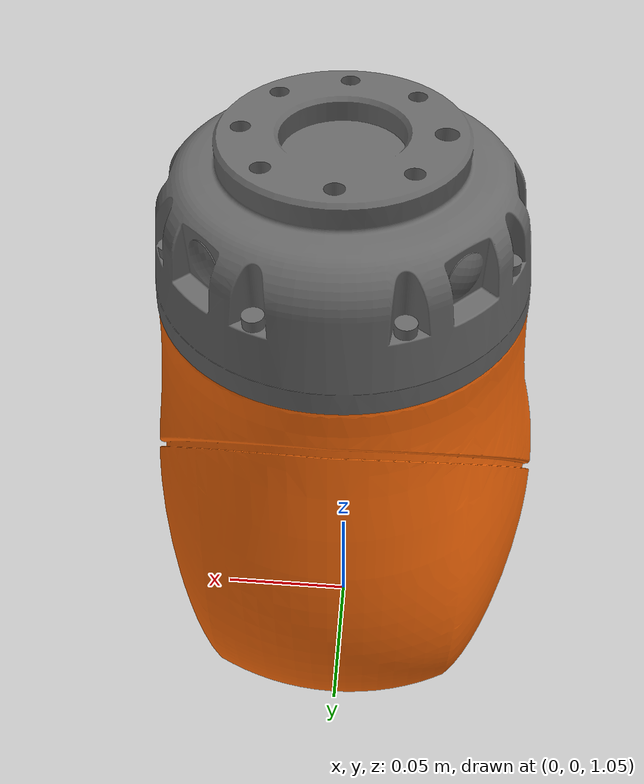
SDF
<?xml version="1.0" ?>
<sdf version='1.6'>
  <model name='iiwa7'>
    <link name='shim_0'>
      <pose frame=''>0 0 0.1575 0 -0 0</pose>
      <inertial>
        <pose frame=''>0 -0.0347 0.113 0 -0 0</pose>
        <mass>2.7025</mass>
        <inertia>
          <ixx>0.0171</ixx>
          <ixy>0</ixy>
          <ixz>0</ixz>
          <iyy>0.0163</iyy>
          <iyz>0</iyz>
          <izz>0.006</izz>
        </inertia>
      </inertial>
      <gravity>1</gravity>
      <velocity_decay/>
      <self_collide>0</self_collide>
    </link>

    <joint name='slide_x' type='prismatic'>
      <child>shim_1</child>
      <parent>shim_0</parent>
      <axis>
        <xyz>1 0 0</xyz>
        <limit>
          <lower>-2</lower>
          <upper>2</upper>
          <effort>300</effort>
          <velocity>0.3</velocity>
        </limit>
        <dynamics>
          <damping>0.0</damping>
          <friction>0</friction>
          <spring_reference>0</spring_reference>
          <spring_stiffness>0</spring_stiffness>
        </dynamics>
        <use_parent_model_frame>1</use_parent_model_frame>
      </axis>
    </joint>

    <link name='shim_1'>
      <pose frame=''>0 0 0.1575 0 -0 0</pose>
      <inertial>
        <pose frame=''>0 -0.0347 0.113 0 -0 0</pose>
        <mass>2.7025</mass>
        <inertia>
          <ixx>0.0171</ixx>
          <ixy>0</ixy>
          <ixz>0</ixz>
          <iyy>0.0163</iyy>
          <iyz>0</iyz>
          <izz>0.006</izz>
        </inertia>
      </inertial>
      <gravity>1</gravity>
      <velocity_decay/>
      <self_collide>0</self_collide>
    </link>

    <joint name='slide_y' type='prismatic'>
      <child>shim_2</child>
      <parent>shim_1</parent>
      <axis>
        <xyz>0 1 0</xyz>
        <limit>
          <lower>-2</lower>
          <upper>2</upper>
          <effort>300</effort>
          <velocity>0.3</velocity>
        </limit>
        <dynamics>
          <damping>0.0</damping>
          <friction>0</friction>
          <spring_reference>0</spring_reference>
          <spring_stiffness>0</spring_stiffness>
        </dynamics>
        <use_parent_model_frame>1</use_parent_model_frame>
      </axis>
    </joint>

    <link name='shim_2'>
      <pose frame=''>0 0 0.1575 0 -0 0</pose>
      <inertial>
        <pose frame=''>0 -0.0347 0.113 0 -0 0</pose>
        <mass>2.7025</mass>
        <inertia>
          <ixx>0.0171</ixx>
          <ixy>0</ixy>
          <ixz>0</ixz>
          <iyy>0.0163</iyy>
          <iyz>0</iyz>
          <izz>0.006</izz>
        </inertia>
      </inertial>
      <gravity>1</gravity>
      <velocity_decay/>
      <self_collide>0</self_collide>
    </link>

    <joint name='slide_z' type='prismatic'>
      <child>iiwa_link_0</child>
      <parent>shim_2</parent>
      <axis>
        <xyz>0 0 1</xyz>
        <limit>
          <lower>-2</lower>
          <upper>2</upper>
          <effort>300</effort>
          <velocity>0.3</velocity>
        </limit>
        <dynamics>
          <damping>0.0</damping>
          <friction>0</friction>
          <spring_reference>0</spring_reference>
          <spring_stiffness>0</spring_stiffness>
        </dynamics>
        <use_parent_model_frame>1</use_parent_model_frame>
      </axis>
    </joint>

    <link name='iiwa_link_0'>
      <pose frame=''>0 0 0 0 -0 0</pose>
      <inertial>
        <pose frame=''>-0.013 0 0.07 0 -0 0</pose>
        <mass>3.863</mass>
        <inertia>
          <ixx>0.0141</ixx>
          <ixy>0</ixy>
          <ixz>0</ixz>
          <iyy>0.0171</iyy>
          <iyz>0</iyz>
          <izz>0.0178</izz>
        </inertia>
      </inertial>
      <gravity>1</gravity>
      <velocity_decay/>
      <self_collide>0</self_collide>
    </link>

    <link name='iiwa_link_1'>
      <pose frame=''>0 0 0.1575 0 -0 0</pose>
      <inertial>
        <pose frame=''>0 -0.0347 0.113 0 -0 0</pose>
        <mass>2.7025</mass>
        <inertia>
          <ixx>0.0171</ixx>
          <ixy>0</ixy>
          <ixz>0</ixz>
          <iyy>0.0163</iyy>
          <iyz>0</iyz>
          <izz>0.006</izz>
        </inertia>
      </inertial>
      <gravity>1</gravity>
      <velocity_decay/>
      <self_collide>0</self_collide>
    </link>
    <joint name='iiwa_joint_1' type='revolute'>
      <child>iiwa_link_1</child>
      <parent>iiwa_link_0</parent>
      <axis>
        <xyz>0 0 1</xyz>
        <limit>
          <lower>-2.96706</lower>
          <upper>2.96706</upper>
          <effort>300</effort>
          <velocity>3.14</velocity>
        </limit>
        <dynamics>
          <damping>0.0</damping>
          <friction>0</friction>
          <spring_reference>0</spring_reference>
          <spring_stiffness>0</spring_stiffness>
        </dynamics>
        <use_parent_model_frame>1</use_parent_model_frame>
      </axis>
    </joint>
    <link name='iiwa_link_2'>
      <pose frame=''>0 0 0.3405 1.5708 -0 -3.14159</pose>
      <inertial>
        <pose frame=''>0.000 0.0668 0.0344 0 -0 0</pose>
        <mass>2.7258</mass>
        <inertia>
          <ixx>0.0170</ixx>
          <ixy>0</ixy>
          <ixz>0</ixz>
          <iyy>0.0162</iyy>
          <iyz>0</iyz>
          <izz>0.0061</izz>
        </inertia>
      </inertial>
      <gravity>1</gravity>
      <velocity_decay/>
      <self_collide>0</self_collide>
    </link>
    <joint name='iiwa_joint_2' type='revolute'>
      <child>iiwa_link_2</child>
      <parent>iiwa_link_1</parent>
      <axis>
        <xyz>-0 1 0</xyz>
        <limit>
          <lower>-2.0944</lower>
          <upper>2.0944</upper>
          <effort>300</effort>
          <velocity>3.14</velocity>
        </limit>
        <dynamics>
          <damping>0.0</damping>
          <friction>0</friction>
          <spring_reference>0</spring_reference>
          <spring_stiffness>0</spring_stiffness>
        </dynamics>
        <use_parent_model_frame>1</use_parent_model_frame>
      </axis>
    </joint>
    <link name='iiwa_link_3'>
      <pose frame=''>0 -0 0.5245 0 0 0</pose>
      <inertial>
        <pose frame=''>0 0.0296 0.1265 0 -0 0</pose>
        <mass>3.175</mass>
        <inertia>
          <ixx>0.025</ixx>
          <ixy>0</ixy>
          <ixz>0</ixz>
          <iyy>0.0238</iyy>
          <iyz>0</iyz>
          <izz>0.0076</izz>
        </inertia>
      </inertial>
      <gravity>1</gravity>
      <velocity_decay/>
      <self_collide>0</self_collide>
    </link>
    <joint name='iiwa_joint_3' type='revolute'>
      <child>iiwa_link_3</child>
      <parent>iiwa_link_2</parent>
      <axis>
        <xyz>0 0 1</xyz>
        <limit>
          <lower>-2.96706</lower>
          <upper>2.96706</upper>
          <effort>300</effort>
          <velocity>3.14</velocity>
        </limit>
        <dynamics>
          <damping>0.0</damping>
          <friction>0</friction>
          <spring_reference>0</spring_reference>
          <spring_stiffness>0</spring_stiffness>
        </dynamics>
        <use_parent_model_frame>1</use_parent_model_frame>
      </axis>
    </joint>
    <link name='iiwa_link_4'>
      <pose frame=''>0 -0 0.74 1.5708 0 0</pose>
      <inertial>
        <pose frame=''>0 0.067 0.034 0 -0 0</pose>
        <mass>2.73</mass>
        <inertia>
          <ixx>0.017</ixx>
          <ixy>0</ixy>
          <ixz>0</ixz>
          <iyy>0.0162</iyy>
          <iyz>0</iyz>
          <izz>0.0061</izz>
        </inertia>
      </inertial>
      <gravity>1</gravity>
      <velocity_decay/>
      <self_collide>0</self_collide>
    </link>
    <joint name='iiwa_joint_4' type='revolute'>
      <child>iiwa_link_4</child>
      <parent>iiwa_link_3</parent>
      <axis>
        <xyz>0 -1 0</xyz>
        <limit>
          <lower>-2.0944</lower>
          <upper>2.0944</upper>
          <effort>300</effort>
          <velocity>3.14</velocity>
        </limit>
        <dynamics>
          <damping>0.0</damping>
          <friction>0</friction>
          <spring_reference>0</spring_reference>
          <spring_stiffness>0</spring_stiffness>
        </dynamics>
        <use_parent_model_frame>1</use_parent_model_frame>
      </axis>
    </joint>
    <link name='iiwa_link_5'>
      <pose frame=''>0 -0 0.924 0 -0 -3.14159</pose>
      <inertial>
        <pose frame=''>0.0001 0.021 0.076 0 -0 0</pose>
        <mass>1.69</mass>
        <inertia>
          <ixx>0.01</ixx>
          <ixy>0</ixy>
          <ixz>0</ixz>
          <iyy>0.0087</iyy>
          <iyz>0</iyz>
          <izz>0.00449</izz>
        </inertia>
      </inertial>
      <gravity>1</gravity>
      <velocity_decay/>
      <self_collide>0</self_collide>
    </link>
    <joint name='iiwa_joint_5' type='revolute'>
      <child>iiwa_link_5</child>
      <parent>iiwa_link_4</parent>
      <axis>
        <xyz>0 0 1</xyz>
        <limit>
          <lower>-2.96706</lower>
          <upper>2.96706</upper>
          <effort>300</effort>
          <velocity>6.28</velocity>
        </limit>
        <dynamics>
          <damping>0.0</damping>
          <friction>0</friction>
          <spring_reference>0</spring_reference>
          <spring_stiffness>0</spring_stiffness>
        </dynamics>
        <use_parent_model_frame>1</use_parent_model_frame>
      </axis>
    </joint>
    <link name='iiwa_link_6'>
      <pose frame=''>0 0 1.1395 1.5708 -0 -3.14159</pose>
      <inertial>
        <pose frame=''>0 0.0026 0.0005 0 -0 0</pose>
        <mass>1.8</mass>
        <inertia>
          <ixx>0.0051</ixx>
          <ixy>0</ixy>
          <ixz>0</ixz>
          <iyy>0.0049</iyy>
          <iyz>0</iyz>
          <izz>0.0035</izz>
        </inertia>
      </inertial>
      <visual name='iiwa_link_6_visual'>
        <pose frame=''>0 0 -0.060700 0 -0 0</pose>
        <geometry>
          <mesh>
            <scale>1 1 1</scale>
            <uri>link_6.obj</uri>
          </mesh>
        </geometry>
        <material>
          <diffuse>1.0 0.423529411765 0.0392156862745 1.0</diffuse>
        </material>
      </visual>
      <gravity>1</gravity>
      <velocity_decay/>
      <self_collide>0</self_collide>
    </link>
    <joint name='iiwa_joint_6' type='revolute'>
      <child>iiwa_link_6</child>
      <parent>iiwa_link_5</parent>
      <axis>
        <xyz>-0 1 -0</xyz>
        <limit>
          <lower>-2.0944</lower>
          <upper>2.0944</upper>
          <effort>300</effort>
          <velocity>6.28</velocity>
        </limit>
        <dynamics>
          <damping>0.0</damping>
          <friction>0</friction>
          <spring_reference>0</spring_reference>
          <spring_stiffness>0</spring_stiffness>
        </dynamics>
        <use_parent_model_frame>1</use_parent_model_frame>
      </axis>
    </joint>
    <link name='iiwa_link_7'>
      <pose frame=''>0 0 1.22 0 0 0</pose>
      <inertial>
        <pose frame=''>0 0 0.0294 0 -0 0</pose>
        <mass>.4</mass>
        <inertia>
          <ixx>0.0004</ixx>
          <ixy>0</ixy>
          <ixz>0</ixz>
          <iyy>0.0004</iyy>
          <iyz>0</iyz>
          <izz>0.0005</izz>
        </inertia>
      </inertial>
      <visual name='iiwa_link_7_visual'>
        <pose frame=''>0 0 0 0 -0 0</pose>
        <geometry>
          <mesh>
            <scale>1 1 1</scale>
            <uri>link_7.obj</uri>
          </mesh>
        </geometry>
        <material>
          <diffuse>0.4 0.4 0.4 1.0</diffuse>
        </material>
      </visual>
      <gravity>1</gravity>
      <velocity_decay/>
      <self_collide>0</self_collide>
    </link>
    <joint name='iiwa_joint_7' type='revolute'>
      <child>iiwa_link_7</child>
      <parent>iiwa_link_6</parent>
      <axis>
        <xyz>0 0 1</xyz>
        <limit>
          <lower>-3.05433</lower>
          <upper>3.05433</upper>
          <effort>300</effort>
          <velocity>6.28</velocity>
        </limit>
        <dynamics>
          <damping>0.0</damping>
          <friction>0</friction>
          <spring_reference>0</spring_reference>
          <spring_stiffness>0</spring_stiffness>
        </dynamics>
        <use_parent_model_frame>1</use_parent_model_frame>
      </axis>
    </joint>
    <static>0</static>
    <plugin name='gazebo_ros_controller' filename='libgazebo_ros_control.so'>
      <robotNamespace>/iiwa</robotNamespace>
    </plugin>
  </model>
</sdf>
